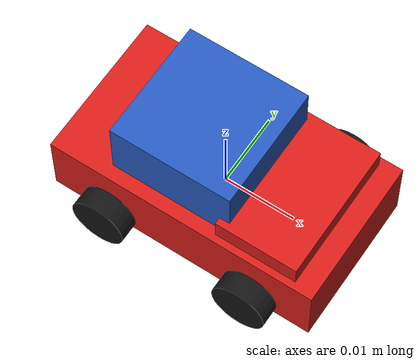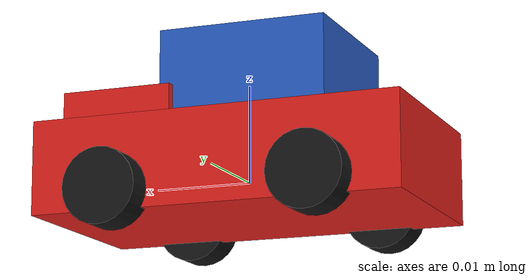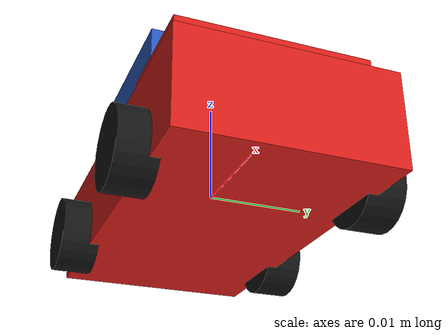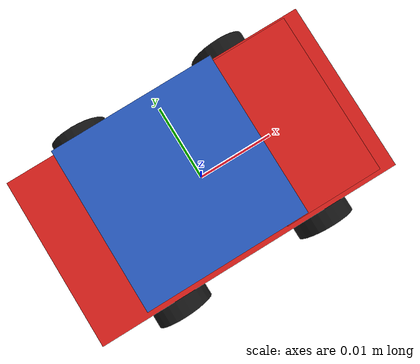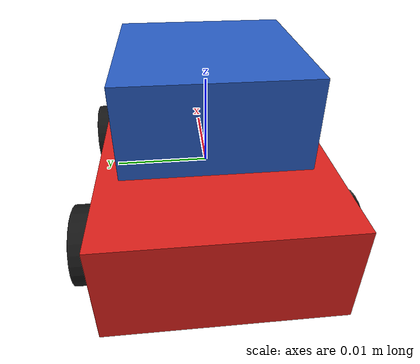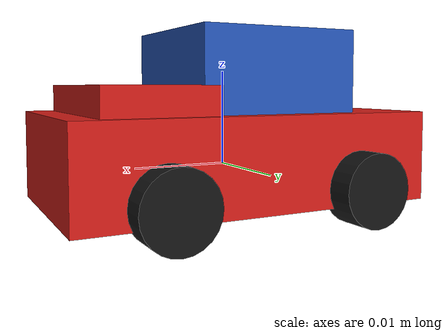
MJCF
<mujoco model="butter_mover">
  <compiler angle="radian"/>
  <asset>
    <material name="car_body" rgba="0.85 0.12 0.10 1" specular="0.4" reflectance="0.3"/>
    <material name="car_cabin" rgba="0.15 0.35 0.75 1" specular="0.4" reflectance="0.3"/>
    <material name="car_wheel" rgba="0.08 0.08 0.08 1" specular="0.4" reflectance="0.3"/>
  </asset>
  <worldbody>
    <body>
      <body name="object">
        <geom name="chassis" type="box" size="0.01905 0.01048 0.00476" pos="0.00000 0.00000 0.00095"
              material="car_body" group="1" contype="0" conaffinity="0"
              solimp="0.998 0.998 0.001" solref="0.001 1" density="100" friction="0.95 0.3 0.1"/>
        <geom name="cabin" type="box" size="0.00857 0.00857 0.00476" pos="-0.00238 0.00000 0.00952"
              material="car_cabin" group="1" contype="0" conaffinity="0"
              solimp="0.998 0.998 0.001" solref="0.001 1" density="100" friction="0.95 0.3 0.1"/>
        <geom name="hood" type="box" size="0.00571 0.00952 0.00286" pos="0.01048 0.00000 0.00571"
              material="car_body" group="1" contype="0" conaffinity="0"
              solimp="0.998 0.998 0.001" solref="0.001 1" density="100" friction="0.95 0.3 0.1"/>
        <geom name="w_fl" type="cylinder" size="0.00381 0.00190" pos="0.01048 0.01143 -0.00190" euler="1.5708 0 0"
              material="car_wheel" group="1" contype="0" conaffinity="0"
              solimp="0.998 0.998 0.001" solref="0.001 1" density="100" friction="0.95 0.3 0.1"/>
        <geom name="w_fr" type="cylinder" size="0.00381 0.00190" pos="0.01048 -0.01143 -0.00190" euler="1.5708 0 0"
              material="car_wheel" group="1" contype="0" conaffinity="0"
              solimp="0.998 0.998 0.001" solref="0.001 1" density="100" friction="0.95 0.3 0.1"/>
        <geom name="w_rl" type="cylinder" size="0.00381 0.00190" pos="-0.01048 0.01143 -0.00190" euler="1.5708 0 0"
              material="car_wheel" group="1" contype="0" conaffinity="0"
              solimp="0.998 0.998 0.001" solref="0.001 1" density="100" friction="0.95 0.3 0.1"/>
        <geom name="w_rr" type="cylinder" size="0.00381 0.00190" pos="-0.01048 -0.01143 -0.00190" euler="1.5708 0 0"
              material="car_wheel" group="1" contype="0" conaffinity="0"
              solimp="0.998 0.998 0.001" solref="0.001 1" density="100" friction="0.95 0.3 0.1"/>
        <geom type="box" size="0.02000 0.01333 0.00857" pos="0.00000 0.00000 0.00238" group="0"
              rgba="0.8 0.2 0.2 0.0" solimp="0.998 0.998 0.001" solref="0.001 1"
              density="100" friction="0.95 0.3 0.1"/>
      </body>
      <site rgba="0 0 0 0" size="0.005" pos="0.00000 0.00000 -0.02000" name="bottom_site" />
      <site rgba="0 0 0 0" size="0.005" pos="0.00000 0.00000 0.02000" name="top_site" />
      <site rgba="0 0 0 0" size="0.005" pos="0.02000 0.02000 0.00000" name="horizontal_radius_site" />
    </body>
  </worldbody>
</mujoco>
